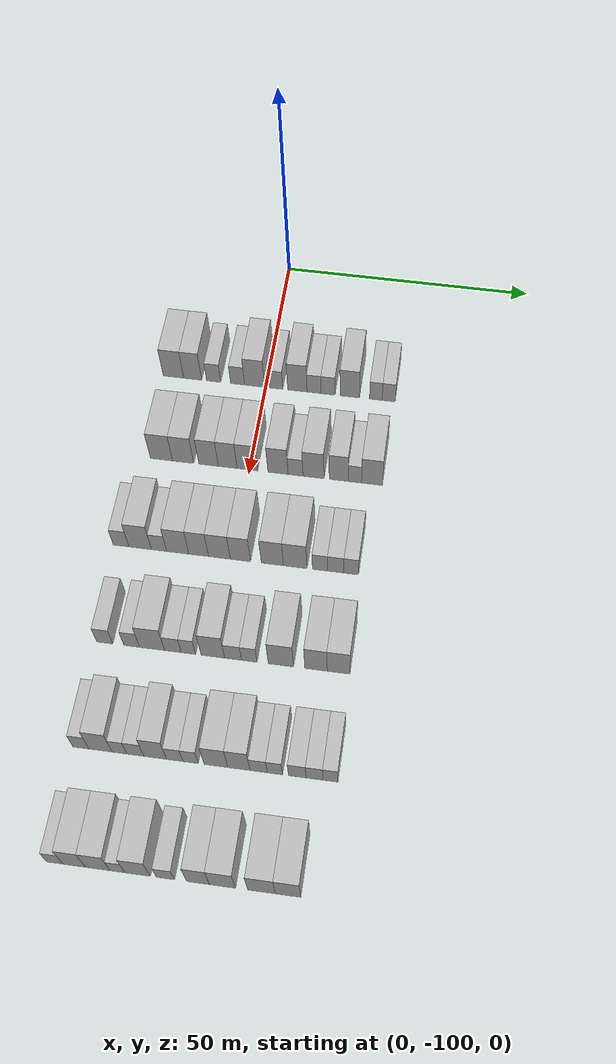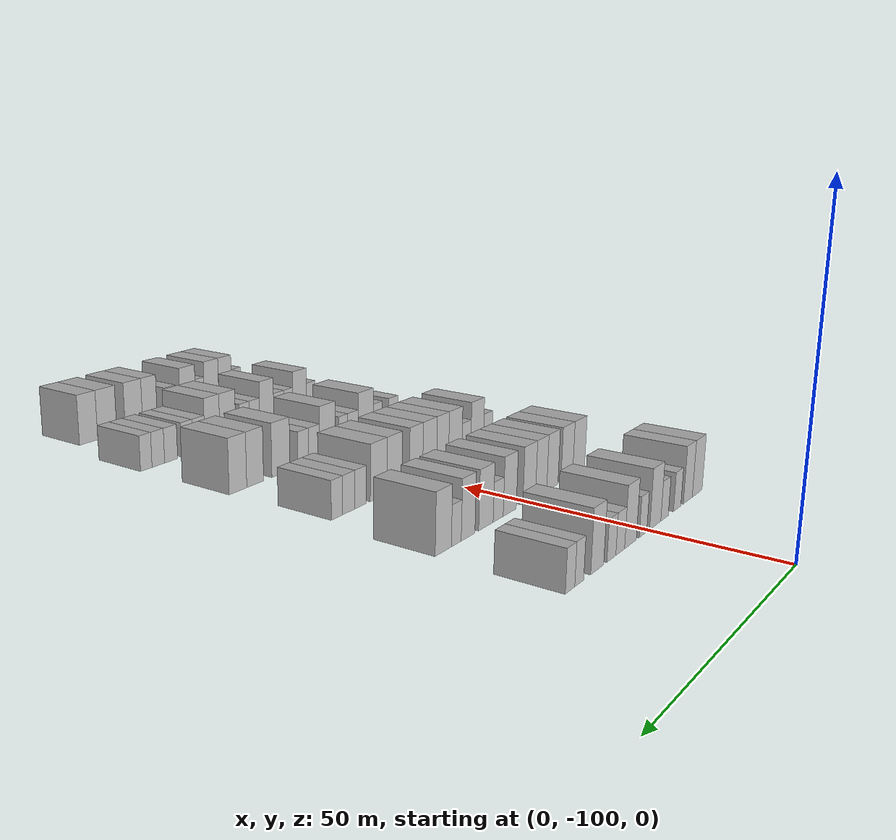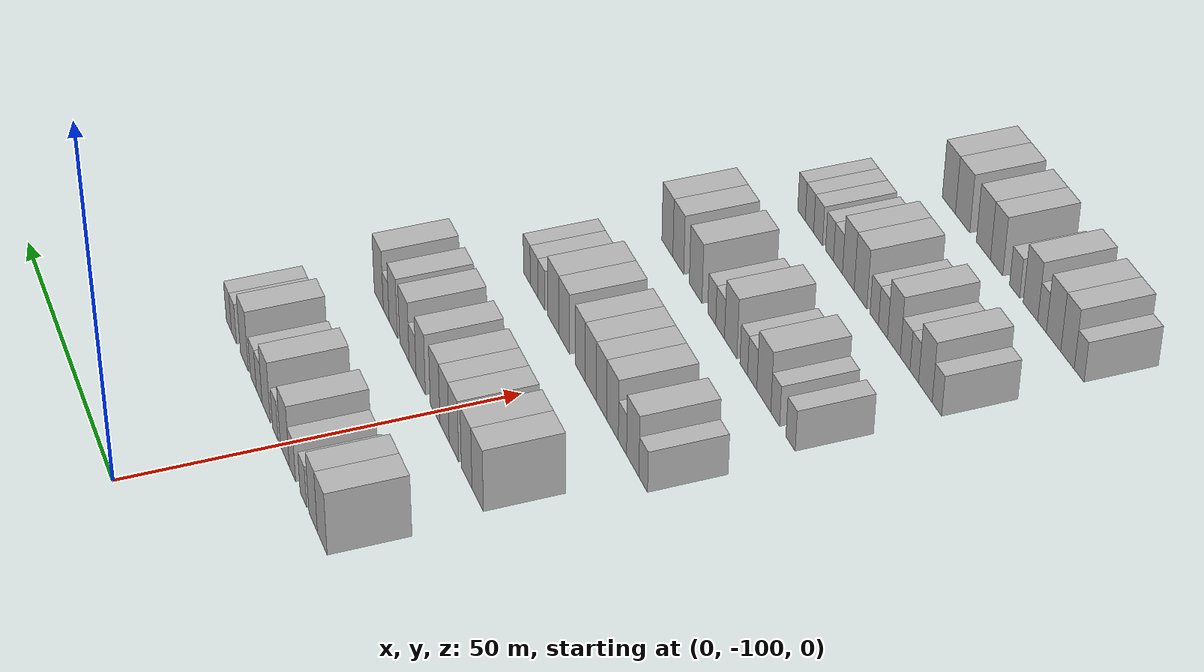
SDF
<sdf version="1.6">
 <world name="default">
  <model name="building_58">
   <static>1</static>
   <pose>25.0000 -118.6194 0 0.000000 0.000000 0.000000</pose>
   <link name="link">
    <pose>0 0 4.50 0 0 0</pose>
    <collision name="collision"><geometry><box><size>10.0000 4.1307 9.0000</size></box></geometry></collision>
    <visual name="visual">
     <cast_shadows>0</cast_shadows>
     <geometry><box><size>10.0000 4.1307 9.0000</size></box></geometry>
     <material>
      <script>
       <uri>model://HANNAS_wall/materials/scripts</uri>
       <uri>model://HANNAS_wall/materials/textures</uri>
       <name>vrc/HANNAS_wall</name>
      </script>
     </material>
    </visual>
   </link>
  </model>
  <model name="building_59">
   <static>1</static>
   <pose>25.0000 -114.7316 0 0.000000 0.000000 0.000000</pose>
   <link name="link">
    <pose>0 0 4.50 0 0 0</pose>
    <collision name="collision"><geometry><box><size>10.0000 3.6450 9.0000</size></box></geometry></collision>
    <visual name="visual">
     <cast_shadows>0</cast_shadows>
     <geometry><box><size>10.0000 3.6450 9.0000</size></box></geometry>
     <material>
      <script>
       <uri>model://HANNAS_wall/materials/scripts</uri>
       <uri>model://HANNAS_wall/materials/textures</uri>
       <name>vrc/HANNAS_wall</name>
      </script>
     </material>
    </visual>
   </link>
  </model>
  <model name="building_60">
   <static>1</static>
   <pose>25.0000 -110.4833 0 0.000000 0.000000 0.000000</pose>
   <link name="link">
    <pose>0 0 3.00 0 0 0</pose>
    <collision name="collision"><geometry><box><size>10.0000 2.8515 6.0000</size></box></geometry></collision>
    <visual name="visual">
     <cast_shadows>0</cast_shadows>
     <geometry><box><size>10.0000 2.8515 6.0000</size></box></geometry>
     <material>
      <script>
       <uri>model://HANNAS_wall/materials/scripts</uri>
       <uri>model://HANNAS_wall/materials/textures</uri>
       <name>vrc/HANNAS_wall</name>
      </script>
     </material>
    </visual>
   </link>
  </model>
  <model name="building_61">
   <static>1</static>
   <pose>25.0000 -105.6531 0 0.000000 0.000000 0.000000</pose>
   <link name="link">
    <pose>0 0 3.00 0 0 0</pose>
    <collision name="collision"><geometry><box><size>10.0000 2.8089 6.0000</size></box></geometry></collision>
    <visual name="visual">
     <cast_shadows>0</cast_shadows>
     <geometry><box><size>10.0000 2.8089 6.0000</size></box></geometry>
     <material>
      <script>
       <uri>model://HANNAS_wall/materials/scripts</uri>
       <uri>model://HANNAS_wall/materials/textures</uri>
       <name>vrc/HANNAS_wall</name>
      </script>
     </material>
    </visual>
   </link>
  </model>
  <model name="building_62">
   <static>1</static>
   <pose>25.0000 -102.2324 0 0.000000 0.000000 0.000000</pose>
   <link name="link">
    <pose>0 0 4.50 0 0 0</pose>
    <collision name="collision"><geometry><box><size>10.0000 4.0327 9.0000</size></box></geometry></collision>
    <visual name="visual">
     <cast_shadows>0</cast_shadows>
     <geometry><box><size>10.0000 4.0327 9.0000</size></box></geometry>
     <material>
      <script>
       <uri>model://HANNAS_wall/materials/scripts</uri>
       <uri>model://HANNAS_wall/materials/textures</uri>
       <name>vrc/HANNAS_wall</name>
      </script>
     </material>
    </visual>
   </link>
  </model>
  <model name="building_63">
   <static>1</static>
   <pose>25.0000 -97.9014 0 0.000000 0.000000 0.000000</pose>
   <link name="link">
    <pose>0 0 3.00 0 0 0</pose>
    <collision name="collision"><geometry><box><size>10.0000 2.6293 6.0000</size></box></geometry></collision>
    <visual name="visual">
     <cast_shadows>0</cast_shadows>
     <geometry><box><size>10.0000 2.6293 6.0000</size></box></geometry>
     <material>
      <script>
       <uri>model://HANNAS_wall/materials/scripts</uri>
       <uri>model://HANNAS_wall/materials/textures</uri>
       <name>vrc/HANNAS_wall</name>
      </script>
     </material>
    </visual>
   </link>
  </model>
  <model name="building_64">
   <static>1</static>
   <pose>25.0000 -93.6507 0 0.000000 0.000000 0.000000</pose>
   <link name="link">
    <pose>0 0 4.50 0 0 0</pose>
    <collision name="collision"><geometry><box><size>10.0000 3.8720 9.0000</size></box></geometry></collision>
    <visual name="visual">
     <cast_shadows>0</cast_shadows>
     <geometry><box><size>10.0000 3.8720 9.0000</size></box></geometry>
     <material>
      <script>
       <uri>model://HANNAS_wall/materials/scripts</uri>
       <uri>model://HANNAS_wall/materials/textures</uri>
       <name>vrc/HANNAS_wall</name>
      </script>
     </material>
    </visual>
   </link>
  </model>
  <model name="building_65">
   <static>1</static>
   <pose>25.0000 -90.3148 0 0.000000 0.000000 0.000000</pose>
   <link name="link">
    <pose>0 0 3.00 0 0 0</pose>
    <collision name="collision"><geometry><box><size>10.0000 2.7999 6.0000</size></box></geometry></collision>
    <visual name="visual">
     <cast_shadows>0</cast_shadows>
     <geometry><box><size>10.0000 2.7999 6.0000</size></box></geometry>
     <material>
      <script>
       <uri>model://HANNAS_wall/materials/scripts</uri>
       <uri>model://HANNAS_wall/materials/textures</uri>
       <name>vrc/HANNAS_wall</name>
      </script>
     </material>
    </visual>
   </link>
  </model>
  <model name="building_66">
   <static>1</static>
   <pose>25.0000 -87.5219 0 0.000000 0.000000 0.000000</pose>
   <link name="link">
    <pose>0 0 3.00 0 0 0</pose>
    <collision name="collision"><geometry><box><size>10.0000 2.7858 6.0000</size></box></geometry></collision>
    <visual name="visual">
     <cast_shadows>0</cast_shadows>
     <geometry><box><size>10.0000 2.7858 6.0000</size></box></geometry>
     <material>
      <script>
       <uri>model://HANNAS_wall/materials/scripts</uri>
       <uri>model://HANNAS_wall/materials/textures</uri>
       <name>vrc/HANNAS_wall</name>
      </script>
     </material>
    </visual>
   </link>
  </model>
  <model name="building_67">
   <static>1</static>
   <pose>25.0000 -83.1992 0 0.000000 0.000000 0.000000</pose>
   <link name="link">
    <pose>0 0 4.50 0 0 0</pose>
    <collision name="collision"><geometry><box><size>10.0000 3.8596 9.0000</size></box></geometry></collision>
    <visual name="visual">
     <cast_shadows>0</cast_shadows>
     <geometry><box><size>10.0000 3.8596 9.0000</size></box></geometry>
     <material>
      <script>
       <uri>model://HANNAS_wall/materials/scripts</uri>
       <uri>model://HANNAS_wall/materials/textures</uri>
       <name>vrc/HANNAS_wall</name>
      </script>
     </material>
    </visual>
   </link>
  </model>
  <model name="building_68">
   <static>1</static>
   <pose>25.0000 -78.0165 0 0.000000 0.000000 0.000000</pose>
   <link name="link">
    <pose>0 0 3.00 0 0 0</pose>
    <collision name="collision"><geometry><box><size>10.0000 2.5059 6.0000</size></box></geometry></collision>
    <visual name="visual">
     <cast_shadows>0</cast_shadows>
     <geometry><box><size>10.0000 2.5059 6.0000</size></box></geometry>
     <material>
      <script>
       <uri>model://HANNAS_wall/materials/scripts</uri>
       <uri>model://HANNAS_wall/materials/textures</uri>
       <name>vrc/HANNAS_wall</name>
      </script>
     </material>
    </visual>
   </link>
  </model>
  <model name="building_69">
   <static>1</static>
   <pose>25.0000 -75.4700 0 0.000000 0.000000 0.000000</pose>
   <link name="link">
    <pose>0 0 3.00 0 0 0</pose>
    <collision name="collision"><geometry><box><size>10.0000 2.5871 6.0000</size></box></geometry></collision>
    <visual name="visual">
     <cast_shadows>0</cast_shadows>
     <geometry><box><size>10.0000 2.5871 6.0000</size></box></geometry>
     <material>
      <script>
       <uri>model://HANNAS_wall/materials/scripts</uri>
       <uri>model://HANNAS_wall/materials/textures</uri>
       <name>vrc/HANNAS_wall</name>
      </script>
     </material>
    </visual>
   </link>
  </model>
  <model name="building_234">
   <static>1</static>
   <pose>44.0000 -117.0620 0 0.000000 0.000000 0.000000</pose>
   <link name="link">
    <pose>0 0 4.50 0 0 0</pose>
    <collision name="collision"><geometry><box><size>10.0000 4.3165 9.0000</size></box></geometry></collision>
    <visual name="visual">
     <cast_shadows>0</cast_shadows>
     <geometry><box><size>10.0000 4.3165 9.0000</size></box></geometry>
     <material>
      <script>
       <uri>model://HANNAS_wall/materials/scripts</uri>
       <uri>model://HANNAS_wall/materials/textures</uri>
       <name>vrc/HANNAS_wall</name>
      </script>
     </material>
    </visual>
   </link>
  </model>
  <model name="building_235">
   <static>1</static>
   <pose>44.0000 -112.8462 0 0.000000 0.000000 0.000000</pose>
   <link name="link">
    <pose>0 0 4.50 0 0 0</pose>
    <collision name="collision"><geometry><box><size>10.0000 4.1151 9.0000</size></box></geometry></collision>
    <visual name="visual">
     <cast_shadows>0</cast_shadows>
     <geometry><box><size>10.0000 4.1151 9.0000</size></box></geometry>
     <material>
      <script>
       <uri>model://HANNAS_wall/materials/scripts</uri>
       <uri>model://HANNAS_wall/materials/textures</uri>
       <name>vrc/HANNAS_wall</name>
      </script>
     </material>
    </visual>
   </link>
  </model>
  <model name="building_236">
   <static>1</static>
   <pose>44.0000 -107.8973 0 0.000000 0.000000 0.000000</pose>
   <link name="link">
    <pose>0 0 4.50 0 0 0</pose>
    <collision name="collision"><geometry><box><size>10.0000 3.7828 9.0000</size></box></geometry></collision>
    <visual name="visual">
     <cast_shadows>0</cast_shadows>
     <geometry><box><size>10.0000 3.7828 9.0000</size></box></geometry>
     <material>
      <script>
       <uri>model://HANNAS_wall/materials/scripts</uri>
       <uri>model://HANNAS_wall/materials/textures</uri>
       <name>vrc/HANNAS_wall</name>
      </script>
     </material>
    </visual>
   </link>
  </model>
  <model name="building_237">
   <static>1</static>
   <pose>44.0000 -104.1863 0 0.000000 0.000000 0.000000</pose>
   <link name="link">
    <pose>0 0 4.50 0 0 0</pose>
    <collision name="collision"><geometry><box><size>10.0000 3.6390 9.0000</size></box></geometry></collision>
    <visual name="visual">
     <cast_shadows>0</cast_shadows>
     <geometry><box><size>10.0000 3.6390 9.0000</size></box></geometry>
     <material>
      <script>
       <uri>model://HANNAS_wall/materials/scripts</uri>
       <uri>model://HANNAS_wall/materials/textures</uri>
       <name>vrc/HANNAS_wall</name>
      </script>
     </material>
    </visual>
   </link>
  </model>
  <model name="building_238">
   <static>1</static>
   <pose>44.0000 -100.3895 0 0.000000 0.000000 0.000000</pose>
   <link name="link">
    <pose>0 0 4.50 0 0 0</pose>
    <collision name="collision"><geometry><box><size>10.0000 3.9548 9.0000</size></box></geometry></collision>
    <visual name="visual">
     <cast_shadows>0</cast_shadows>
     <geometry><box><size>10.0000 3.9548 9.0000</size></box></geometry>
     <material>
      <script>
       <uri>model://HANNAS_wall/materials/scripts</uri>
       <uri>model://HANNAS_wall/materials/textures</uri>
       <name>vrc/HANNAS_wall</name>
      </script>
     </material>
    </visual>
   </link>
  </model>
  <model name="building_239">
   <static>1</static>
   <pose>44.0000 -94.4741 0 0.000000 0.000000 0.000000</pose>
   <link name="link">
    <pose>0 0 4.50 0 0 0</pose>
    <collision name="collision"><geometry><box><size>10.0000 3.8760 9.0000</size></box></geometry></collision>
    <visual name="visual">
     <cast_shadows>0</cast_shadows>
     <geometry><box><size>10.0000 3.8760 9.0000</size></box></geometry>
     <material>
      <script>
       <uri>model://HANNAS_wall/materials/scripts</uri>
       <uri>model://HANNAS_wall/materials/textures</uri>
       <name>vrc/HANNAS_wall</name>
      </script>
     </material>
    </visual>
   </link>
  </model>
  <model name="building_240">
   <static>1</static>
   <pose>44.0000 -91.0992 0 0.000000 0.000000 0.000000</pose>
   <link name="link">
    <pose>0 0 3.00 0 0 0</pose>
    <collision name="collision"><geometry><box><size>10.0000 2.8737 6.0000</size></box></geometry></collision>
    <visual name="visual">
     <cast_shadows>0</cast_shadows>
     <geometry><box><size>10.0000 2.8737 6.0000</size></box></geometry>
     <material>
      <script>
       <uri>model://HANNAS_wall/materials/scripts</uri>
       <uri>model://HANNAS_wall/materials/textures</uri>
       <name>vrc/HANNAS_wall</name>
      </script>
     </material>
    </visual>
   </link>
  </model>
  <model name="building_241">
   <static>1</static>
   <pose>44.0000 -87.6434 0 0.000000 0.000000 0.000000</pose>
   <link name="link">
    <pose>0 0 4.50 0 0 0</pose>
    <collision name="collision"><geometry><box><size>10.0000 4.0379 9.0000</size></box></geometry></collision>
    <visual name="visual">
     <cast_shadows>0</cast_shadows>
     <geometry><box><size>10.0000 4.0379 9.0000</size></box></geometry>
     <material>
      <script>
       <uri>model://HANNAS_wall/materials/scripts</uri>
       <uri>model://HANNAS_wall/materials/textures</uri>
       <name>vrc/HANNAS_wall</name>
      </script>
     </material>
    </visual>
   </link>
  </model>
  <model name="building_242">
   <static>1</static>
   <pose>44.0000 -82.8118 0 0.000000 0.000000 0.000000</pose>
   <link name="link">
    <pose>0 0 4.50 0 0 0</pose>
    <collision name="collision"><geometry><box><size>10.0000 3.6252 9.0000</size></box></geometry></collision>
    <visual name="visual">
     <cast_shadows>0</cast_shadows>
     <geometry><box><size>10.0000 3.6252 9.0000</size></box></geometry>
     <material>
      <script>
       <uri>model://HANNAS_wall/materials/scripts</uri>
       <uri>model://HANNAS_wall/materials/textures</uri>
       <name>vrc/HANNAS_wall</name>
      </script>
     </material>
    </visual>
   </link>
  </model>
  <model name="building_243">
   <static>1</static>
   <pose>44.0000 -79.7321 0 0.000000 0.000000 0.000000</pose>
   <link name="link">
    <pose>0 0 3.00 0 0 0</pose>
    <collision name="collision"><geometry><box><size>10.0000 2.5342 6.0000</size></box></geometry></collision>
    <visual name="visual">
     <cast_shadows>0</cast_shadows>
     <geometry><box><size>10.0000 2.5342 6.0000</size></box></geometry>
     <material>
      <script>
       <uri>model://HANNAS_wall/materials/scripts</uri>
       <uri>model://HANNAS_wall/materials/textures</uri>
       <name>vrc/HANNAS_wall</name>
      </script>
     </material>
    </visual>
   </link>
  </model>
  <model name="building_244">
   <static>1</static>
   <pose>44.0000 -76.4653 0 0.000000 0.000000 0.000000</pose>
   <link name="link">
    <pose>0 0 4.50 0 0 0</pose>
    <collision name="collision"><geometry><box><size>10.0000 3.9995 9.0000</size></box></geometry></collision>
    <visual name="visual">
     <cast_shadows>0</cast_shadows>
     <geometry><box><size>10.0000 3.9995 9.0000</size></box></geometry>
     <material>
      <script>
       <uri>model://HANNAS_wall/materials/scripts</uri>
       <uri>model://HANNAS_wall/materials/textures</uri>
       <name>vrc/HANNAS_wall</name>
      </script>
     </material>
    </visual>
   </link>
  </model>
  <model name="building_409">
   <static>1</static>
   <pose>63.0000 -120.6780 0 0.000000 0.000000 0.000000</pose>
   <link name="link">
    <pose>0 0 3.00 0 0 0</pose>
    <collision name="collision"><geometry><box><size>10.0000 2.9309 6.0000</size></box></geometry></collision>
    <visual name="visual">
     <cast_shadows>0</cast_shadows>
     <geometry><box><size>10.0000 2.9309 6.0000</size></box></geometry>
     <material>
      <script>
       <uri>model://HANNAS_wall/materials/scripts</uri>
       <uri>model://HANNAS_wall/materials/textures</uri>
       <name>vrc/HANNAS_wall</name>
      </script>
     </material>
    </visual>
   </link>
  </model>
  <model name="building_410">
   <static>1</static>
   <pose>63.0000 -117.1012 0 0.000000 0.000000 0.000000</pose>
   <link name="link">
    <pose>0 0 4.50 0 0 0</pose>
    <collision name="collision"><geometry><box><size>10.0000 4.2227 9.0000</size></box></geometry></collision>
    <visual name="visual">
     <cast_shadows>0</cast_shadows>
     <geometry><box><size>10.0000 4.2227 9.0000</size></box></geometry>
     <material>
      <script>
       <uri>model://HANNAS_wall/materials/scripts</uri>
       <uri>model://HANNAS_wall/materials/textures</uri>
       <name>vrc/HANNAS_wall</name>
      </script>
     </material>
    </visual>
   </link>
  </model>
  <model name="building_411">
   <static>1</static>
   <pose>63.0000 -113.5569 0 0.000000 0.000000 0.000000</pose>
   <link name="link">
    <pose>0 0 3.00 0 0 0</pose>
    <collision name="collision"><geometry><box><size>10.0000 2.8659 6.0000</size></box></geometry></collision>
    <visual name="visual">
     <cast_shadows>0</cast_shadows>
     <geometry><box><size>10.0000 2.8659 6.0000</size></box></geometry>
     <material>
      <script>
       <uri>model://HANNAS_wall/materials/scripts</uri>
       <uri>model://HANNAS_wall/materials/textures</uri>
       <name>vrc/HANNAS_wall</name>
      </script>
     </material>
    </visual>
   </link>
  </model>
  <model name="building_412">
   <static>1</static>
   <pose>63.0000 -110.0433 0 0.000000 0.000000 0.000000</pose>
   <link name="link">
    <pose>0 0 4.50 0 0 0</pose>
    <collision name="collision"><geometry><box><size>10.0000 4.1614 9.0000</size></box></geometry></collision>
    <visual name="visual">
     <cast_shadows>0</cast_shadows>
     <geometry><box><size>10.0000 4.1614 9.0000</size></box></geometry>
     <material>
      <script>
       <uri>model://HANNAS_wall/materials/scripts</uri>
       <uri>model://HANNAS_wall/materials/textures</uri>
       <name>vrc/HANNAS_wall</name>
      </script>
     </material>
    </visual>
   </link>
  </model>
  <model name="building_413">
   <static>1</static>
   <pose>63.0000 -106.1347 0 0.000000 0.000000 0.000000</pose>
   <link name="link">
    <pose>0 0 4.50 0 0 0</pose>
    <collision name="collision"><geometry><box><size>10.0000 3.6558 9.0000</size></box></geometry></collision>
    <visual name="visual">
     <cast_shadows>0</cast_shadows>
     <geometry><box><size>10.0000 3.6558 9.0000</size></box></geometry>
     <material>
      <script>
       <uri>model://HANNAS_wall/materials/scripts</uri>
       <uri>model://HANNAS_wall/materials/textures</uri>
       <name>vrc/HANNAS_wall</name>
      </script>
     </material>
    </visual>
   </link>
  </model>
  <model name="building_414">
   <static>1</static>
   <pose>63.0000 -102.2850 0 0.000000 0.000000 0.000000</pose>
   <link name="link">
    <pose>0 0 4.50 0 0 0</pose>
    <collision name="collision"><geometry><box><size>10.0000 4.0436 9.0000</size></box></geometry></collision>
    <visual name="visual">
     <cast_shadows>0</cast_shadows>
     <geometry><box><size>10.0000 4.0436 9.0000</size></box></geometry>
     <material>
      <script>
       <uri>model://HANNAS_wall/materials/scripts</uri>
       <uri>model://HANNAS_wall/materials/textures</uri>
       <name>vrc/HANNAS_wall</name>
      </script>
     </material>
    </visual>
   </link>
  </model>
  <model name="building_415">
   <static>1</static>
   <pose>63.0000 -98.3821 0 0.000000 0.000000 0.000000</pose>
   <link name="link">
    <pose>0 0 4.50 0 0 0</pose>
    <collision name="collision"><geometry><box><size>10.0000 3.7623 9.0000</size></box></geometry></collision>
    <visual name="visual">
     <cast_shadows>0</cast_shadows>
     <geometry><box><size>10.0000 3.7623 9.0000</size></box></geometry>
     <material>
      <script>
       <uri>model://HANNAS_wall/materials/scripts</uri>
       <uri>model://HANNAS_wall/materials/textures</uri>
       <name>vrc/HANNAS_wall</name>
      </script>
     </material>
    </visual>
   </link>
  </model>
  <model name="building_416">
   <static>1</static>
   <pose>63.0000 -92.4648 0 0.000000 0.000000 0.000000</pose>
   <link name="link">
    <pose>0 0 4.50 0 0 0</pose>
    <collision name="collision"><geometry><box><size>10.0000 4.0722 9.0000</size></box></geometry></collision>
    <visual name="visual">
     <cast_shadows>0</cast_shadows>
     <geometry><box><size>10.0000 4.0722 9.0000</size></box></geometry>
     <material>
      <script>
       <uri>model://HANNAS_wall/materials/scripts</uri>
       <uri>model://HANNAS_wall/materials/textures</uri>
       <name>vrc/HANNAS_wall</name>
      </script>
     </material>
    </visual>
   </link>
  </model>
  <model name="building_417">
   <static>1</static>
   <pose>63.0000 -88.2416 0 0.000000 0.000000 0.000000</pose>
   <link name="link">
    <pose>0 0 4.50 0 0 0</pose>
    <collision name="collision"><geometry><box><size>10.0000 4.3742 9.0000</size></box></geometry></collision>
    <visual name="visual">
     <cast_shadows>0</cast_shadows>
     <geometry><box><size>10.0000 4.3742 9.0000</size></box></geometry>
     <material>
      <script>
       <uri>model://HANNAS_wall/materials/scripts</uri>
       <uri>model://HANNAS_wall/materials/textures</uri>
       <name>vrc/HANNAS_wall</name>
      </script>
     </material>
    </visual>
   </link>
  </model>
  <model name="building_418">
   <static>1</static>
   <pose>63.0000 -83.6569 0 0.000000 0.000000 0.000000</pose>
   <link name="link">
    <pose>0 0 3.00 0 0 0</pose>
    <collision name="collision"><geometry><box><size>10.0000 2.7954 6.0000</size></box></geometry></collision>
    <visual name="visual">
     <cast_shadows>0</cast_shadows>
     <geometry><box><size>10.0000 2.7954 6.0000</size></box></geometry>
     <material>
      <script>
       <uri>model://HANNAS_wall/materials/scripts</uri>
       <uri>model://HANNAS_wall/materials/textures</uri>
       <name>vrc/HANNAS_wall</name>
      </script>
     </material>
    </visual>
   </link>
  </model>
  <model name="building_419">
   <static>1</static>
   <pose>63.0000 -80.7693 0 0.000000 0.000000 0.000000</pose>
   <link name="link">
    <pose>0 0 3.00 0 0 0</pose>
    <collision name="collision"><geometry><box><size>10.0000 2.9796 6.0000</size></box></geometry></collision>
    <visual name="visual">
     <cast_shadows>0</cast_shadows>
     <geometry><box><size>10.0000 2.9796 6.0000</size></box></geometry>
     <material>
      <script>
       <uri>model://HANNAS_wall/materials/scripts</uri>
       <uri>model://HANNAS_wall/materials/textures</uri>
       <name>vrc/HANNAS_wall</name>
      </script>
     </material>
    </visual>
   </link>
  </model>
  <model name="building_420">
   <static>1</static>
   <pose>63.0000 -77.9347 0 0.000000 0.000000 0.000000</pose>
   <link name="link">
    <pose>0 0 3.00 0 0 0</pose>
    <collision name="collision"><geometry><box><size>10.0000 2.6896 6.0000</size></box></geometry></collision>
    <visual name="visual">
     <cast_shadows>0</cast_shadows>
     <geometry><box><size>10.0000 2.6896 6.0000</size></box></geometry>
     <material>
      <script>
       <uri>model://HANNAS_wall/materials/scripts</uri>
       <uri>model://HANNAS_wall/materials/textures</uri>
       <name>vrc/HANNAS_wall</name>
      </script>
     </material>
    </visual>
   </link>
  </model>
  <model name="building_584">
   <static>1</static>
   <pose>82.0000 -119.3059 0 0.000000 0.000000 0.000000</pose>
   <link name="link">
    <pose>0 0 3.00 0 0 0</pose>
    <collision name="collision"><geometry><box><size>10.0000 2.8840 6.0000</size></box></geometry></collision>
    <visual name="visual">
     <cast_shadows>0</cast_shadows>
     <geometry><box><size>10.0000 2.8840 6.0000</size></box></geometry>
     <material>
      <script>
       <uri>model://HANNAS_wall/materials/scripts</uri>
       <uri>model://HANNAS_wall/materials/textures</uri>
       <name>vrc/HANNAS_wall</name>
      </script>
     </material>
    </visual>
   </link>
  </model>
  <model name="building_585">
   <static>1</static>
   <pose>82.0000 -114.4537 0 0.000000 0.000000 0.000000</pose>
   <link name="link">
    <pose>0 0 3.00 0 0 0</pose>
    <collision name="collision"><geometry><box><size>10.0000 2.8204 6.0000</size></box></geometry></collision>
    <visual name="visual">
     <cast_shadows>0</cast_shadows>
     <geometry><box><size>10.0000 2.8204 6.0000</size></box></geometry>
     <material>
      <script>
       <uri>model://HANNAS_wall/materials/scripts</uri>
       <uri>model://HANNAS_wall/materials/textures</uri>
       <name>vrc/HANNAS_wall</name>
      </script>
     </material>
    </visual>
   </link>
  </model>
  <model name="building_586">
   <static>1</static>
   <pose>82.0000 -110.7980 0 0.000000 0.000000 0.000000</pose>
   <link name="link">
    <pose>0 0 4.50 0 0 0</pose>
    <collision name="collision"><geometry><box><size>10.0000 4.4909 9.0000</size></box></geometry></collision>
    <visual name="visual">
     <cast_shadows>0</cast_shadows>
     <geometry><box><size>10.0000 4.4909 9.0000</size></box></geometry>
     <material>
      <script>
       <uri>model://HANNAS_wall/materials/scripts</uri>
       <uri>model://HANNAS_wall/materials/textures</uri>
       <name>vrc/HANNAS_wall</name>
      </script>
     </material>
    </visual>
   </link>
  </model>
  <model name="building_587">
   <static>1</static>
   <pose>82.0000 -107.0557 0 0.000000 0.000000 0.000000</pose>
   <link name="link">
    <pose>0 0 3.00 0 0 0</pose>
    <collision name="collision"><geometry><box><size>10.0000 2.9937 6.0000</size></box></geometry></collision>
    <visual name="visual">
     <cast_shadows>0</cast_shadows>
     <geometry><box><size>10.0000 2.9937 6.0000</size></box></geometry>
     <material>
      <script>
       <uri>model://HANNAS_wall/materials/scripts</uri>
       <uri>model://HANNAS_wall/materials/textures</uri>
       <name>vrc/HANNAS_wall</name>
      </script>
     </material>
    </visual>
   </link>
  </model>
  <model name="building_588">
   <static>1</static>
   <pose>82.0000 -104.2826 0 0.000000 0.000000 0.000000</pose>
   <link name="link">
    <pose>0 0 3.00 0 0 0</pose>
    <collision name="collision"><geometry><box><size>10.0000 2.5525 6.0000</size></box></geometry></collision>
    <visual name="visual">
     <cast_shadows>0</cast_shadows>
     <geometry><box><size>10.0000 2.5525 6.0000</size></box></geometry>
     <material>
      <script>
       <uri>model://HANNAS_wall/materials/scripts</uri>
       <uri>model://HANNAS_wall/materials/textures</uri>
       <name>vrc/HANNAS_wall</name>
      </script>
     </material>
    </visual>
   </link>
  </model>
  <model name="building_589">
   <static>1</static>
   <pose>82.0000 -99.9147 0 0.000000 0.000000 0.000000</pose>
   <link name="link">
    <pose>0 0 4.50 0 0 0</pose>
    <collision name="collision"><geometry><box><size>10.0000 4.1833 9.0000</size></box></geometry></collision>
    <visual name="visual">
     <cast_shadows>0</cast_shadows>
     <geometry><box><size>10.0000 4.1833 9.0000</size></box></geometry>
     <material>
      <script>
       <uri>model://HANNAS_wall/materials/scripts</uri>
       <uri>model://HANNAS_wall/materials/textures</uri>
       <name>vrc/HANNAS_wall</name>
      </script>
     </material>
    </visual>
   </link>
  </model>
  <model name="building_590">
   <static>1</static>
   <pose>82.0000 -96.3266 0 0.000000 0.000000 0.000000</pose>
   <link name="link">
    <pose>0 0 3.00 0 0 0</pose>
    <collision name="collision"><geometry><box><size>10.0000 2.9930 6.0000</size></box></geometry></collision>
    <visual name="visual">
     <cast_shadows>0</cast_shadows>
     <geometry><box><size>10.0000 2.9930 6.0000</size></box></geometry>
     <material>
      <script>
       <uri>model://HANNAS_wall/materials/scripts</uri>
       <uri>model://HANNAS_wall/materials/textures</uri>
       <name>vrc/HANNAS_wall</name>
      </script>
     </material>
    </visual>
   </link>
  </model>
  <model name="building_591">
   <static>1</static>
   <pose>82.0000 -93.4463 0 0.000000 0.000000 0.000000</pose>
   <link name="link">
    <pose>0 0 3.00 0 0 0</pose>
    <collision name="collision"><geometry><box><size>10.0000 2.7678 6.0000</size></box></geometry></collision>
    <visual name="visual">
     <cast_shadows>0</cast_shadows>
     <geometry><box><size>10.0000 2.7678 6.0000</size></box></geometry>
     <material>
      <script>
       <uri>model://HANNAS_wall/materials/scripts</uri>
       <uri>model://HANNAS_wall/materials/textures</uri>
       <name>vrc/HANNAS_wall</name>
      </script>
     </material>
    </visual>
   </link>
  </model>
  <model name="building_592">
   <static>1</static>
   <pose>82.0000 -87.8330 0 0.000000 0.000000 0.000000</pose>
   <link name="link">
    <pose>0 0 4.50 0 0 0</pose>
    <collision name="collision"><geometry><box><size>10.0000 4.4586 9.0000</size></box></geometry></collision>
    <visual name="visual">
     <cast_shadows>0</cast_shadows>
     <geometry><box><size>10.0000 4.4586 9.0000</size></box></geometry>
     <material>
      <script>
       <uri>model://HANNAS_wall/materials/scripts</uri>
       <uri>model://HANNAS_wall/materials/textures</uri>
       <name>vrc/HANNAS_wall</name>
      </script>
     </material>
    </visual>
   </link>
  </model>
  <model name="building_593">
   <static>1</static>
   <pose>82.0000 -81.6382 0 0.000000 0.000000 0.000000</pose>
   <link name="link">
    <pose>0 0 4.50 0 0 0</pose>
    <collision name="collision"><geometry><box><size>10.0000 3.9311 9.0000</size></box></geometry></collision>
    <visual name="visual">
     <cast_shadows>0</cast_shadows>
     <geometry><box><size>10.0000 3.9311 9.0000</size></box></geometry>
     <material>
      <script>
       <uri>model://HANNAS_wall/materials/scripts</uri>
       <uri>model://HANNAS_wall/materials/textures</uri>
       <name>vrc/HANNAS_wall</name>
      </script>
     </material>
    </visual>
   </link>
  </model>
  <model name="building_594">
   <static>1</static>
   <pose>82.0000 -77.6781 0 0.000000 0.000000 0.000000</pose>
   <link name="link">
    <pose>0 0 4.50 0 0 0</pose>
    <collision name="collision"><geometry><box><size>10.0000 3.9890 9.0000</size></box></geometry></collision>
    <visual name="visual">
     <cast_shadows>0</cast_shadows>
     <geometry><box><size>10.0000 3.9890 9.0000</size></box></geometry>
     <material>
      <script>
       <uri>model://HANNAS_wall/materials/scripts</uri>
       <uri>model://HANNAS_wall/materials/textures</uri>
       <name>vrc/HANNAS_wall</name>
      </script>
     </material>
    </visual>
   </link>
  </model>
  <model name="building_751">
   <static>1</static>
   <pose>101.0000 -118.9655 0 0.000000 0.000000 0.000000</pose>
   <link name="link">
    <pose>0 0 3.00 0 0 0</pose>
    <collision name="collision"><geometry><box><size>10.0000 2.7422 6.0000</size></box></geometry></collision>
    <visual name="visual">
     <cast_shadows>0</cast_shadows>
     <geometry><box><size>10.0000 2.7422 6.0000</size></box></geometry>
     <material>
      <script>
       <uri>model://HANNAS_wall/materials/scripts</uri>
       <uri>model://HANNAS_wall/materials/textures</uri>
       <name>vrc/HANNAS_wall</name>
      </script>
     </material>
    </visual>
   </link>
  </model>
  <model name="building_752">
   <static>1</static>
   <pose>101.0000 -115.5954 0 0.000000 0.000000 0.000000</pose>
   <link name="link">
    <pose>0 0 4.50 0 0 0</pose>
    <collision name="collision"><geometry><box><size>10.0000 3.9979 9.0000</size></box></geometry></collision>
    <visual name="visual">
     <cast_shadows>0</cast_shadows>
     <geometry><box><size>10.0000 3.9979 9.0000</size></box></geometry>
     <material>
      <script>
       <uri>model://HANNAS_wall/materials/scripts</uri>
       <uri>model://HANNAS_wall/materials/textures</uri>
       <name>vrc/HANNAS_wall</name>
      </script>
     </material>
    </visual>
   </link>
  </model>
  <model name="building_753">
   <static>1</static>
   <pose>101.0000 -112.3209 0 0.000000 0.000000 0.000000</pose>
   <link name="link">
    <pose>0 0 3.00 0 0 0</pose>
    <collision name="collision"><geometry><box><size>10.0000 2.5512 6.0000</size></box></geometry></collision>
    <visual name="visual">
     <cast_shadows>0</cast_shadows>
     <geometry><box><size>10.0000 2.5512 6.0000</size></box></geometry>
     <material>
      <script>
       <uri>model://HANNAS_wall/materials/scripts</uri>
       <uri>model://HANNAS_wall/materials/textures</uri>
       <name>vrc/HANNAS_wall</name>
      </script>
     </material>
    </visual>
   </link>
  </model>
  <model name="building_754">
   <static>1</static>
   <pose>101.0000 -109.5812 0 0.000000 0.000000 0.000000</pose>
   <link name="link">
    <pose>0 0 3.00 0 0 0</pose>
    <collision name="collision"><geometry><box><size>10.0000 2.9281 6.0000</size></box></geometry></collision>
    <visual name="visual">
     <cast_shadows>0</cast_shadows>
     <geometry><box><size>10.0000 2.9281 6.0000</size></box></geometry>
     <material>
      <script>
       <uri>model://HANNAS_wall/materials/scripts</uri>
       <uri>model://HANNAS_wall/materials/textures</uri>
       <name>vrc/HANNAS_wall</name>
      </script>
     </material>
    </visual>
   </link>
  </model>
  <model name="building_755">
   <static>1</static>
   <pose>101.0000 -106.1786 0 0.000000 0.000000 0.000000</pose>
   <link name="link">
    <pose>0 0 4.50 0 0 0</pose>
    <collision name="collision"><geometry><box><size>10.0000 3.8772 9.0000</size></box></geometry></collision>
    <visual name="visual">
     <cast_shadows>0</cast_shadows>
     <geometry><box><size>10.0000 3.8772 9.0000</size></box></geometry>
     <material>
      <script>
       <uri>model://HANNAS_wall/materials/scripts</uri>
       <uri>model://HANNAS_wall/materials/textures</uri>
       <name>vrc/HANNAS_wall</name>
      </script>
     </material>
    </visual>
   </link>
  </model>
  <model name="building_756">
   <static>1</static>
   <pose>101.0000 -102.8472 0 0.000000 0.000000 0.000000</pose>
   <link name="link">
    <pose>0 0 3.00 0 0 0</pose>
    <collision name="collision"><geometry><box><size>10.0000 2.7856 6.0000</size></box></geometry></collision>
    <visual name="visual">
     <cast_shadows>0</cast_shadows>
     <geometry><box><size>10.0000 2.7856 6.0000</size></box></geometry>
     <material>
      <script>
       <uri>model://HANNAS_wall/materials/scripts</uri>
       <uri>model://HANNAS_wall/materials/textures</uri>
       <name>vrc/HANNAS_wall</name>
      </script>
     </material>
    </visual>
   </link>
  </model>
  <model name="building_757">
   <static>1</static>
   <pose>101.0000 -100.1454 0 0.000000 0.000000 0.000000</pose>
   <link name="link">
    <pose>0 0 3.00 0 0 0</pose>
    <collision name="collision"><geometry><box><size>10.0000 2.6180 6.0000</size></box></geometry></collision>
    <visual name="visual">
     <cast_shadows>0</cast_shadows>
     <geometry><box><size>10.0000 2.6180 6.0000</size></box></geometry>
     <material>
      <script>
       <uri>model://HANNAS_wall/materials/scripts</uri>
       <uri>model://HANNAS_wall/materials/textures</uri>
       <name>vrc/HANNAS_wall</name>
      </script>
     </material>
    </visual>
   </link>
  </model>
  <model name="building_758">
   <static>1</static>
   <pose>101.0000 -95.8220 0 0.000000 0.000000 0.000000</pose>
   <link name="link">
    <pose>0 0 4.50 0 0 0</pose>
    <collision name="collision"><geometry><box><size>10.0000 4.0288 9.0000</size></box></geometry></collision>
    <visual name="visual">
     <cast_shadows>0</cast_shadows>
     <geometry><box><size>10.0000 4.0288 9.0000</size></box></geometry>
     <material>
      <script>
       <uri>model://HANNAS_wall/materials/scripts</uri>
       <uri>model://HANNAS_wall/materials/textures</uri>
       <name>vrc/HANNAS_wall</name>
      </script>
     </material>
    </visual>
   </link>
  </model>
  <model name="building_759">
   <static>1</static>
   <pose>101.0000 -91.9284 0 0.000000 0.000000 0.000000</pose>
   <link name="link">
    <pose>0 0 4.50 0 0 0</pose>
    <collision name="collision"><geometry><box><size>10.0000 3.7583 9.0000</size></box></geometry></collision>
    <visual name="visual">
     <cast_shadows>0</cast_shadows>
     <geometry><box><size>10.0000 3.7583 9.0000</size></box></geometry>
     <material>
      <script>
       <uri>model://HANNAS_wall/materials/scripts</uri>
       <uri>model://HANNAS_wall/materials/textures</uri>
       <name>vrc/HANNAS_wall</name>
      </script>
     </material>
    </visual>
   </link>
  </model>
  <model name="building_760">
   <static>1</static>
   <pose>101.0000 -88.5824 0 0.000000 0.000000 0.000000</pose>
   <link name="link">
    <pose>0 0 3.00 0 0 0</pose>
    <collision name="collision"><geometry><box><size>10.0000 2.9337 6.0000</size></box></geometry></collision>
    <visual name="visual">
     <cast_shadows>0</cast_shadows>
     <geometry><box><size>10.0000 2.9337 6.0000</size></box></geometry>
     <material>
      <script>
       <uri>model://HANNAS_wall/materials/scripts</uri>
       <uri>model://HANNAS_wall/materials/textures</uri>
       <name>vrc/HANNAS_wall</name>
      </script>
     </material>
    </visual>
   </link>
  </model>
  <model name="building_761">
   <static>1</static>
   <pose>101.0000 -85.8206 0 0.000000 0.000000 0.000000</pose>
   <link name="link">
    <pose>0 0 3.00 0 0 0</pose>
    <collision name="collision"><geometry><box><size>10.0000 2.5899 6.0000</size></box></geometry></collision>
    <visual name="visual">
     <cast_shadows>0</cast_shadows>
     <geometry><box><size>10.0000 2.5899 6.0000</size></box></geometry>
     <material>
      <script>
       <uri>model://HANNAS_wall/materials/scripts</uri>
       <uri>model://HANNAS_wall/materials/textures</uri>
       <name>vrc/HANNAS_wall</name>
      </script>
     </material>
    </visual>
   </link>
  </model>
  <model name="building_762">
   <static>1</static>
   <pose>101.0000 -82.0401 0 0.000000 0.000000 0.000000</pose>
   <link name="link">
    <pose>0 0 3.00 0 0 0</pose>
    <collision name="collision"><geometry><box><size>10.0000 2.9709 6.0000</size></box></geometry></collision>
    <visual name="visual">
     <cast_shadows>0</cast_shadows>
     <geometry><box><size>10.0000 2.9709 6.0000</size></box></geometry>
     <material>
      <script>
       <uri>model://HANNAS_wall/materials/scripts</uri>
       <uri>model://HANNAS_wall/materials/textures</uri>
       <name>vrc/HANNAS_wall</name>
      </script>
     </material>
    </visual>
   </link>
  </model>
  <model name="building_763">
   <static>1</static>
   <pose>101.0000 -79.1414 0 0.000000 0.000000 0.000000</pose>
   <link name="link">
    <pose>0 0 3.00 0 0 0</pose>
    <collision name="collision"><geometry><box><size>10.0000 2.8266 6.0000</size></box></geometry></collision>
    <visual name="visual">
     <cast_shadows>0</cast_shadows>
     <geometry><box><size>10.0000 2.8266 6.0000</size></box></geometry>
     <material>
      <script>
       <uri>model://HANNAS_wall/materials/scripts</uri>
       <uri>model://HANNAS_wall/materials/textures</uri>
       <name>vrc/HANNAS_wall</name>
      </script>
     </material>
    </visual>
   </link>
  </model>
  <model name="building_764">
   <static>1</static>
   <pose>101.0000 -76.4678 0 0.000000 0.000000 0.000000</pose>
   <link name="link">
    <pose>0 0 3.00 0 0 0</pose>
    <collision name="collision"><geometry><box><size>10.0000 2.5206 6.0000</size></box></geometry></collision>
    <visual name="visual">
     <cast_shadows>0</cast_shadows>
     <geometry><box><size>10.0000 2.5206 6.0000</size></box></geometry>
     <material>
      <script>
       <uri>model://HANNAS_wall/materials/scripts</uri>
       <uri>model://HANNAS_wall/materials/textures</uri>
       <name>vrc/HANNAS_wall</name>
      </script>
     </material>
    </visual>
   </link>
  </model>
  <model name="building_933">
   <static>1</static>
   <pose>120.0000 -118.5952 0 0.000000 0.000000 0.000000</pose>
   <link name="link">
    <pose>0 0 3.00 0 0 0</pose>
    <collision name="collision"><geometry><box><size>10.0000 2.6726 6.0000</size></box></geometry></collision>
    <visual name="visual">
     <cast_shadows>0</cast_shadows>
     <geometry><box><size>10.0000 2.6726 6.0000</size></box></geometry>
     <material>
      <script>
       <uri>model://HANNAS_wall/materials/scripts</uri>
       <uri>model://HANNAS_wall/materials/textures</uri>
       <name>vrc/HANNAS_wall</name>
      </script>
     </material>
    </visual>
   </link>
  </model>
  <model name="building_934">
   <static>1</static>
   <pose>120.0000 -115.4019 0 0.000000 0.000000 0.000000</pose>
   <link name="link">
    <pose>0 0 4.50 0 0 0</pose>
    <collision name="collision"><geometry><box><size>10.0000 3.7139 9.0000</size></box></geometry></collision>
    <visual name="visual">
     <cast_shadows>0</cast_shadows>
     <geometry><box><size>10.0000 3.7139 9.0000</size></box></geometry>
     <material>
      <script>
       <uri>model://HANNAS_wall/materials/scripts</uri>
       <uri>model://HANNAS_wall/materials/textures</uri>
       <name>vrc/HANNAS_wall</name>
      </script>
     </material>
    </visual>
   </link>
  </model>
  <model name="building_935">
   <static>1</static>
   <pose>120.0000 -111.5367 0 0.000000 0.000000 0.000000</pose>
   <link name="link">
    <pose>0 0 4.50 0 0 0</pose>
    <collision name="collision"><geometry><box><size>10.0000 4.0166 9.0000</size></box></geometry></collision>
    <visual name="visual">
     <cast_shadows>0</cast_shadows>
     <geometry><box><size>10.0000 4.0166 9.0000</size></box></geometry>
     <material>
      <script>
       <uri>model://HANNAS_wall/materials/scripts</uri>
       <uri>model://HANNAS_wall/materials/textures</uri>
       <name>vrc/HANNAS_wall</name>
      </script>
     </material>
    </visual>
   </link>
  </model>
  <model name="building_936">
   <static>1</static>
   <pose>120.0000 -108.3130 0 0.000000 0.000000 0.000000</pose>
   <link name="link">
    <pose>0 0 3.00 0 0 0</pose>
    <collision name="collision"><geometry><box><size>10.0000 2.4307 6.0000</size></box></geometry></collision>
    <visual name="visual">
     <cast_shadows>0</cast_shadows>
     <geometry><box><size>10.0000 2.4307 6.0000</size></box></geometry>
     <material>
      <script>
       <uri>model://HANNAS_wall/materials/scripts</uri>
       <uri>model://HANNAS_wall/materials/textures</uri>
       <name>vrc/HANNAS_wall</name>
      </script>
     </material>
    </visual>
   </link>
  </model>
  <model name="building_937">
   <static>1</static>
   <pose>120.0000 -105.0191 0 0.000000 0.000000 0.000000</pose>
   <link name="link">
    <pose>0 0 4.50 0 0 0</pose>
    <collision name="collision"><geometry><box><size>10.0000 4.1572 9.0000</size></box></geometry></collision>
    <visual name="visual">
     <cast_shadows>0</cast_shadows>
     <geometry><box><size>10.0000 4.1572 9.0000</size></box></geometry>
     <material>
      <script>
       <uri>model://HANNAS_wall/materials/scripts</uri>
       <uri>model://HANNAS_wall/materials/textures</uri>
       <name>vrc/HANNAS_wall</name>
      </script>
     </material>
    </visual>
   </link>
  </model>
  <model name="building_938">
   <static>1</static>
   <pose>120.0000 -100.4687 0 0.000000 0.000000 0.000000</pose>
   <link name="link">
    <pose>0 0 3.00 0 0 0</pose>
    <collision name="collision"><geometry><box><size>10.0000 2.9436 6.0000</size></box></geometry></collision>
    <visual name="visual">
     <cast_shadows>0</cast_shadows>
     <geometry><box><size>10.0000 2.9436 6.0000</size></box></geometry>
     <material>
      <script>
       <uri>model://HANNAS_wall/materials/scripts</uri>
       <uri>model://HANNAS_wall/materials/textures</uri>
       <name>vrc/HANNAS_wall</name>
      </script>
     </material>
    </visual>
   </link>
  </model>
  <model name="building_939">
   <static>1</static>
   <pose>120.0000 -95.1641 0 0.000000 0.000000 0.000000</pose>
   <link name="link">
    <pose>0 0 4.50 0 0 0</pose>
    <collision name="collision"><geometry><box><size>10.0000 3.6657 9.0000</size></box></geometry></collision>
    <visual name="visual">
     <cast_shadows>0</cast_shadows>
     <geometry><box><size>10.0000 3.6657 9.0000</size></box></geometry>
     <material>
      <script>
       <uri>model://HANNAS_wall/materials/scripts</uri>
       <uri>model://HANNAS_wall/materials/textures</uri>
       <name>vrc/HANNAS_wall</name>
      </script>
     </material>
    </visual>
   </link>
  </model>
  <model name="building_940">
   <static>1</static>
   <pose>120.0000 -91.2136 0 0.000000 0.000000 0.000000</pose>
   <link name="link">
    <pose>0 0 4.50 0 0 0</pose>
    <collision name="collision"><geometry><box><size>10.0000 4.2352 9.0000</size></box></geometry></collision>
    <visual name="visual">
     <cast_shadows>0</cast_shadows>
     <geometry><box><size>10.0000 4.2352 9.0000</size></box></geometry>
     <material>
      <script>
       <uri>model://HANNAS_wall/materials/scripts</uri>
       <uri>model://HANNAS_wall/materials/textures</uri>
       <name>vrc/HANNAS_wall</name>
      </script>
     </material>
    </visual>
   </link>
  </model>
  <model name="building_941">
   <static>1</static>
   <pose>120.0000 -84.8831 0 0.000000 0.000000 0.000000</pose>
   <link name="link">
    <pose>0 0 4.50 0 0 0</pose>
    <collision name="collision"><geometry><box><size>10.0000 4.4259 9.0000</size></box></geometry></collision>
    <visual name="visual">
     <cast_shadows>0</cast_shadows>
     <geometry><box><size>10.0000 4.4259 9.0000</size></box></geometry>
     <material>
      <script>
       <uri>model://HANNAS_wall/materials/scripts</uri>
       <uri>model://HANNAS_wall/materials/textures</uri>
       <name>vrc/HANNAS_wall</name>
      </script>
     </material>
    </visual>
   </link>
  </model>
  <model name="building_942">
   <static>1</static>
   <pose>120.0000 -80.6234 0 0.000000 0.000000 0.000000</pose>
   <link name="link">
    <pose>0 0 4.50 0 0 0</pose>
    <collision name="collision"><geometry><box><size>10.0000 4.0934 9.0000</size></box></geometry></collision>
    <visual name="visual">
     <cast_shadows>0</cast_shadows>
     <geometry><box><size>10.0000 4.0934 9.0000</size></box></geometry>
     <material>
      <script>
       <uri>model://HANNAS_wall/materials/scripts</uri>
       <uri>model://HANNAS_wall/materials/textures</uri>
       <name>vrc/HANNAS_wall</name>
      </script>
     </material>
    </visual>
   </link>
  </model>
 </world>
</sdf>
